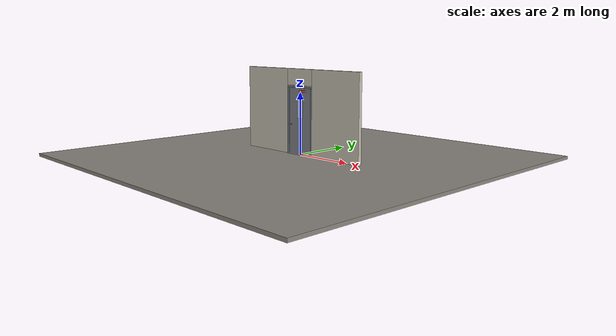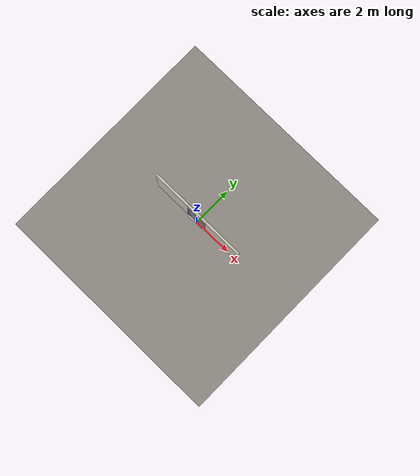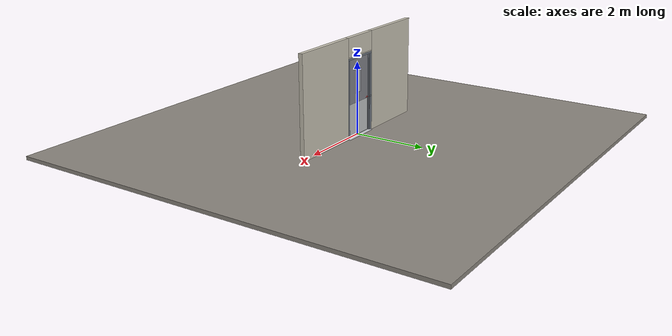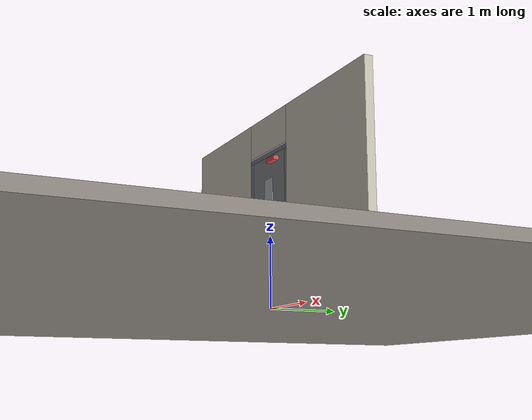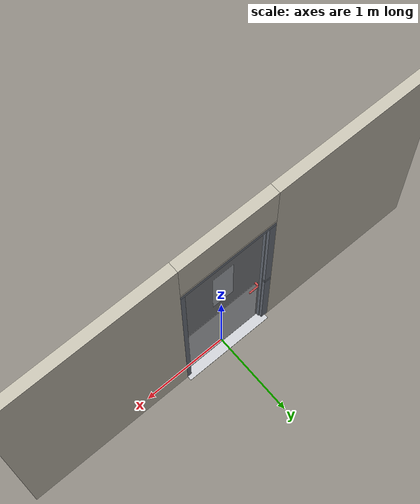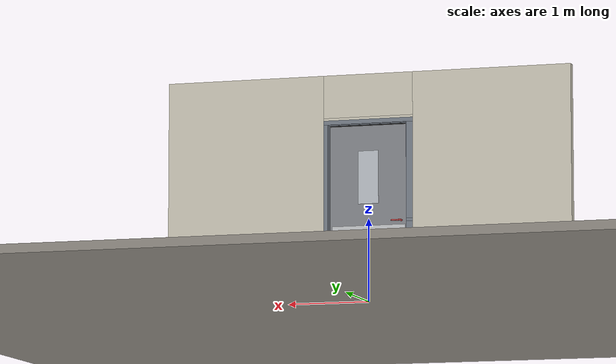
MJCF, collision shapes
<?xml version="1.0" ?>
<mujoco model="db0385_swing_single_simple">
  <compiler angle="radian" meshdir="../../hardware" texturedir="../../textures" autolimits="true" inertiafromgeom="false"/>
  <option timestep="0.002" integrator="implicitfast" cone="elliptic" impratio="10" noslip_iterations="3">
    <flag multiccd="enable"/>
  </option>
  <size memory="16M"/>
  <default>
    <geom condim="4" solref="0.005 1" solimp="0.95 0.99 0.001"/>
    <joint solreflimit="0.005 1" solimplimit="0.95 0.99 0.001"/>
    <tendon solreflimit="0.005 1"/>
    <equality solref="0.002 1"/>
  </default>
  <visual>
    <headlight ambient="0.4 0.4 0.4" diffuse="0.7 0.7 0.7" specular="0.2 0.2 0.2"/>
    <quality shadowsize="4096"/>
    <map znear="0.01" zfar="60"/>
  </visual>
  <asset>
    <mesh name="closer_body_b226fdb10b" file="closer_body_b226fdb10b.obj"/>
    <mesh name="hinge_e22b26c0c1" file="hinge_e22b26c0c1.obj"/>
    <mesh name="hinge_jamb_e1d088f8dc" file="hinge_jamb_e1d088f8dc.obj"/>
    <mesh name="lever_6268dcb28c" file="lever_6268dcb28c.obj"/>
    <material name="mat_floor" rgba="0.55 0.53 0.5 1" specular="0.2" shininess="0.15" reflectance="0"/>
    <material name="mat_wall" rgba="0.78 0.76 0.7 1" specular="0.2" shininess="0.1" reflectance="0"/>
    <material name="mat_leaf" rgba="0.5 0.51 0.53 1" specular="0.2" shininess="0.63" reflectance="0"/>
    <material name="mat_glass" rgba="0.9 0.93 0.95 0.6" specular="0.2" shininess="0.5" reflectance="0.1"/>
    <material name="mat_hinge" rgba="0.65 0.66 0.68 1" specular="0.74" shininess="0.5" reflectance="0.36"/>
    <material name="mat_op_stainless" rgba="0.75 0.76 0.77 1" specular="0.8" shininess="0.65" reflectance="0.4"/>
    <material name="mat_trim" rgba="0.85 0.66 0.3 1" specular="0.8" shininess="0.75" reflectance="0.4"/>
    <material name="mat_bolt" rgba="0.85 0.66 0.3 1" specular="0.8" shininess="0.75" reflectance="0.4"/>
    <material name="mat_frame" rgba="0.45 0.48 0.52 1" specular="0.32" shininess="0.6" reflectance="0.08"/>
    <material name="mat_seal" rgba="0.1 0.1 0.1 1" specular="0.2" shininess="0.1" reflectance="0"/>
    <material name="mat_threshold" rgba="0.8 0.81 0.83 1" specular="0.8" shininess="0.6" reflectance="0.4"/>
    <material name="mat_closer" rgba="0.22 0.17 0.13 1" specular="0.8" shininess="0.6" reflectance="0.4"/>
    <material name="mat_kick" rgba="0.75 0.76 0.77 1" specular="0.8" shininess="0.65" reflectance="0.4"/>
    <material name="mat_exit_sign" rgba="0.85 0.1 0.1 1" specular="0.2" shininess="0.6" reflectance="0"/>
    <material name="mat_sign_bracket" rgba="0.8 0.81 0.83 1" specular="0.8" shininess="0.6" reflectance="0.4"/>
    <material name="mat_sign" rgba="0.75 0.76 0.77 1" specular="0.8" shininess="0.65" reflectance="0.4"/>
    <material name="mat_placard" rgba="0.95 0.75 0.05 1" specular="0.2" shininess="0.5" reflectance="0"/>
    <texture name="skybox" type="skybox" builtin="gradient" rgb1="0.6 0.7 0.85" rgb2="0.9 0.92 0.95" width="256" height="256"/>
  </asset>
  <worldbody>
    <light name="sun" pos="1.5 -2.5 4" dir="-0.3 0.5 -0.8" directional="true" diffuse="0.8 0.8 0.8" specular="0.3 0.3 0.3" castshadow="true"/>
    <light name="fill" pos="-1.5 2.5 3" dir="0.3 -0.5 -0.7" directional="true" diffuse="0.35 0.35 0.4" castshadow="false"/>
    <camera name="robot_view" pos="0 -2.609312 1.812087" xyaxes="1 0 0 0 0.26963 0.962964" fovy="52"/>
    <camera name="far_view" pos="0 2.666313 1.812087" xyaxes="-1 0 0 0 -0.26963 0.962964" fovy="52"/>
    <camera name="iso" pos="-2.004737 -2.187262 2.234138" xyaxes="0.741536 -0.670913 0 0.242917 0.268487 0.932151" fovy="46"/>
    <camera name="detail_handle" pos="-0.136 -0.877 1.245" xyaxes="0.97561 0.219512 0 -0.070934 0.315262 0.94635" fovy="38"/>
    <geom name="floor" type="box" size="6 6 0.05" pos="0 0 -0.05" material="mat_floor" group="0" contype="1" conaffinity="1" friction="0.8 0.005 0.0001" density="2400"/>
    <geom name="wall_left" type="box" size="0.967 0.0575 1.3735" pos="-1.533 0.0285 1.3735" material="mat_wall" group="0" contype="1" conaffinity="1" friction="0.6 0.005 0.0001" density="800"/>
    <geom name="wall_right" type="box" size="0.982 0.0575 1.3735" pos="1.518 0.0285 1.3735" material="mat_wall" group="0" contype="1" conaffinity="1" friction="0.6 0.005 0.0001" density="800"/>
    <geom name="wall_header" type="box" size="0.551 0.0575 0.26" pos="-0.015 0.0285 2.487" material="mat_wall" group="0" contype="1" conaffinity="1" friction="0.6 0.005 0.0001" density="800"/>
    <geom name="hinge_0_jamb" type="mesh" mesh="hinge_jamb_e1d088f8dc" pos="0.483 -0.029 0.259" quat="0 0 1 0" material="mat_hinge" group="1" contype="0" conaffinity="0" density="7850"/>
    <geom name="hinge_1_jamb" type="mesh" mesh="hinge_jamb_e1d088f8dc" pos="0.483 -0.029 1.076" quat="0 0 1 0" material="mat_hinge" group="1" contype="0" conaffinity="0" density="7850"/>
    <geom name="hinge_2_jamb" type="mesh" mesh="hinge_jamb_e1d088f8dc" pos="0.483 -0.029 1.963" quat="0 0 1 0" material="mat_hinge" group="1" contype="0" conaffinity="0" density="7850"/>
    <geom name="jamb_hinge" type="box" size="0.025 0.0575 1.0735" pos="0.511 0.0285 1.0735" material="mat_frame" group="0" contype="1" conaffinity="1" friction="0.6 0.005 0.0001" density="300"/>
    <geom name="strike_965_wall_n" type="box" size="0.04 0.03825 0.0183" pos="-0.526 0.04775 0.965" material="mat_frame" group="0" contype="1" conaffinity="1" friction="0.6 0.005 0.0001" density="300"/>
    <geom name="strike_965_wall_p" type="box" size="0.04 0.008 0.0183" pos="-0.526 -0.0175 0.965" material="mat_frame" group="0" contype="1" conaffinity="1" friction="0.6 0.005 0.0001" density="300"/>
    <geom name="strike_965_ramp" type="box" size="0.04 0.018028 0.0183" pos="-0.529282 -0.018312 0.965" quat="0.957092 0 0 -0.289784" material="mat_frame" group="0" contype="1" conaffinity="1" friction="0.12 0.005 0.0001" density="300"/>
    <geom name="strike_965_back" type="box" size="0.0285 0.0095 0.0183" pos="-0.5375 0 0.965" material="mat_frame" group="0" contype="1" conaffinity="1" friction="0.6 0.005 0.0001" density="300"/>
    <geom name="jamb_strike_0" type="box" size="0.04 0.0575 0.47335" pos="-0.526 0.0285 0.47335" material="mat_frame" group="0" contype="1" conaffinity="1" friction="0.6 0.005 0.0001" density="300"/>
    <geom name="jamb_strike_1" type="box" size="0.04 0.0575 0.58185" pos="-0.526 0.0285 1.56515" material="mat_frame" group="0" contype="1" conaffinity="1" friction="0.6 0.005 0.0001" density="300"/>
    <geom name="jamb_head" type="box" size="0.551 0.0575 0.025" pos="-0.015 0.0285 2.172" material="mat_frame" group="0" contype="1" conaffinity="1" friction="0.6 0.005 0.0001" density="300"/>
    <geom name="head_stud" type="box" size="0.551 0.0575 0.015" pos="-0.015 0.0285 2.212" material="mat_wall" group="0" contype="1" conaffinity="1" friction="0.6 0.005 0.0001" density="500"/>
    <geom name="stop_hinge" type="box" size="0.0055 0.016 1.0735" pos="0.4805 0.0385 1.0735" material="mat_frame" group="0" contype="1" conaffinity="1" friction="0.6 0.005 0.0001" density="300"/>
    <geom name="stop_strike" type="box" size="0.0055 0.016 1.0735" pos="-0.4805 0.0385 1.0735" material="mat_frame" group="0" contype="1" conaffinity="1" friction="0.6 0.005 0.0001" density="300"/>
    <geom name="stop_head" type="box" size="0.486 0.016 0.0055" pos="0 0.0385 2.1415" material="mat_frame" group="0" contype="1" conaffinity="1" friction="0.6 0.005 0.0001" density="300"/>
    <geom name="seal_hinge" type="box" size="0.004 0.0025 1.0735" pos="0.483 0.0245 1.0735" material="mat_seal" group="1" contype="0" conaffinity="0" density="1100"/>
    <geom name="seal_strike" type="box" size="0.004 0.0025 1.0735" pos="-0.483 0.0245 1.0735" material="mat_seal" group="1" contype="0" conaffinity="0" density="1100"/>
    <geom name="seal_head" type="box" size="0.466 0.0025 0.008" pos="0 0.0245 2.135" material="mat_seal" group="1" contype="0" conaffinity="0" density="1100"/>
    <geom name="threshold" type="box" size="0.536 0.1075 0.004" pos="0 0.0285 0.004" material="mat_threshold" group="0" contype="1" conaffinity="1" friction="0.6 0.005 0.0001" density="2700"/>
    <site name="approach_point" pos="0 -1.5 0" quat="1 0 0 0" size="0.05" rgba="0.2 0.9 0.2 0.5" group="4"/>
    <site name="goal_point" pos="0 1.5 0" quat="1 0 0 0" size="0.05" rgba="0.2 0.9 0.2 0.5" group="4"/>
    <site name="door_plane_center" pos="0 0 1.0735" quat="1 0 0 0" size="0.02" rgba="0.2 0.9 0.2 0.5" group="4"/>
    <body name="leaf" pos="0.486 0 0">
      <inertial pos="-0.45718 -0.004257 1.100765" mass="56.295695" quat="0.515859 -0.511905 -0.477287 -0.494004" diaginertia="4.031002561 26.042213659 30.015356772"/>
      <joint name="leaf_hinge" type="hinge" axis="0 0 1" pos="-0.003 -0.029 0" limited="true" range="0 1.745329" solreflimit="0.02 1" damping="10.334212" frictionloss="2.209501" stiffness="14.018367" springref="-2.188557" armature="0.02"/>
      <geom name="leaf_slab" type="box" size="0.4825 0.022 1.067" pos="-0.4855 0 1.076" material="mat_leaf" group="0" contype="1" conaffinity="1" friction="0.4 0.005 0.0001" density="1"/>
      <geom name="leaf_glass_0" type="box" size="0.125 0.0228 0.3201" pos="-0.4855 0 1.5028" material="mat_glass" group="1" contype="0" conaffinity="0" density="1"/>
      <geom name="hinge_0" type="mesh" mesh="hinge_e22b26c0c1" pos="-0.003 -0.029 0.259" quat="0 0 1 0" material="mat_hinge" group="1" contype="0" conaffinity="0" density="7850"/>
      <geom name="hinge_1" type="mesh" mesh="hinge_e22b26c0c1" pos="-0.003 -0.029 1.076" quat="0 0 1 0" material="mat_hinge" group="1" contype="0" conaffinity="0" density="7850"/>
      <geom name="hinge_2" type="mesh" mesh="hinge_e22b26c0c1" pos="-0.003 -0.029 1.963" quat="0 0 1 0" material="mat_hinge" group="1" contype="0" conaffinity="0" density="7850"/>
      <geom name="leaf_latch_bolt_faceplate" type="box" size="0.0006 0.014 0.0283" pos="-0.9674 0 0.965" material="mat_bolt" group="1" contype="0" conaffinity="0" density="8500"/>
      <geom name="closer_body" type="mesh" mesh="closer_body_b226fdb10b" pos="-0.3 -0.022 2.054" quat="0 0 -0.707107 0.707107" material="mat_closer" group="1" contype="0" conaffinity="0" density="2000"/>
      <geom name="closer_body_col" type="box" size="0.12 0.04 0.03" pos="-0.3 -0.062 2.054" material="mat_closer" group="3" contype="1" conaffinity="1" rgba="0.8 0.3 0.3 0.25" friction="0.6 0.005 0.0001" density="2000"/>
      <geom name="armor_plate" type="box" size="0.4525 0.0008 0.45" pos="-0.4855 0.0228 0.469" material="mat_kick" group="2" contype="0" conaffinity="0" density="7900"/>
      <site name="leaf_edge_mid" pos="-0.968 0 1.067" quat="1 0 0 0" size="0.02" rgba="0.2 0.9 0.2 0.5" group="4"/>
      <body name="leaf_handle" pos="-0.898 0 0.965">
        <inertial pos="0.03705 0 0" mass="0.984967" quat="0.707107 0 0 -0.707107" diaginertia="0.002278035 0.00380889 0.005520856"/>
        <joint name="leaf_handle_hinge" type="hinge" axis="0 1 0" limited="true" range="0 0.96" damping="0.255791" frictionloss="0.05" stiffness="1.2" springref="-0.583333" armature="0.01"/>
        <geom name="leaf_handle_lever_n" type="mesh" mesh="lever_6268dcb28c" pos="0 -0.022 0" quat="0 0 -0.707107 0.707107" material="mat_op_stainless" group="1" contype="0" conaffinity="0" density="3000"/>
        <geom name="leaf_handle_lever_col_n" type="capsule" size="0.0095 0.0505" pos="0.06 -0.077 0" quat="0.707107 0 0.707107 0" material="mat_op_stainless" group="3" contype="1" conaffinity="1" rgba="0.8 0.3 0.3 0.25" friction="0.7 0.01 0.0001" density="3000"/>
        <geom name="leaf_handle_hub_col_n" type="cylinder" size="0.012 0.022" pos="0 -0.052 0" quat="0.707107 -0.707107 0 0" material="mat_op_stainless" group="3" contype="1" conaffinity="1" rgba="0.8 0.3 0.3 0.25" friction="0.6 0.005 0.0001" density="3000"/>
        <geom name="leaf_handle_lever_p" type="mesh" mesh="lever_6268dcb28c" pos="0 0.022 0" quat="0 0 0.707107 0.707107" material="mat_op_stainless" group="1" contype="0" conaffinity="0" density="3000"/>
        <geom name="leaf_handle_lever_col_p" type="capsule" size="0.0095 0.0505" pos="0.06 0.077 0" quat="0.707107 0 0.707107 0" material="mat_op_stainless" group="3" contype="1" conaffinity="1" rgba="0.8 0.3 0.3 0.25" friction="0.7 0.01 0.0001" density="3000"/>
        <geom name="leaf_handle_hub_col_p" type="cylinder" size="0.012 0.022" pos="0 0.052 0" quat="0.707107 -0.707107 0 0" material="mat_op_stainless" group="3" contype="1" conaffinity="1" rgba="0.8 0.3 0.3 0.25" friction="0.6 0.005 0.0001" density="3000"/>
        <site name="leaf_handle_grip_n" pos="0.096 -0.077 0" quat="1 0 0 0" size="0.012" rgba="0.2 0.9 0.2 0.5" group="4"/>
        <site name="leaf_handle_grip_p" pos="0.096 0.077 0" quat="1 0 0 0" size="0.012" rgba="0.2 0.9 0.2 0.5" group="4"/>
      </body>
      <body name="leaf_latch_bolt" pos="-0.968 0 0.965">
        <inertial pos="0.0055 0 0" mass="0.074627" quat="0.92388 0.382683 0 0" diaginertia="0.000002271 0.000013255 0.000013255"/>
        <joint name="leaf_latch_bolt_slide" type="slide" axis="1 0 0" limited="true" range="0 0.019" damping="2" frictionloss="0.3" stiffness="600" springref="-0.01" armature="0.1"/>
        <geom name="leaf_latch_bolt_capsule" type="capsule" size="0.008 0.0165" pos="0.0055 0 0" quat="0.707107 0 -0.707107 0" material="mat_bolt" group="0" contype="1" conaffinity="1" friction="0.2 0.005 0.0001" density="8500"/>
      </body>
    </body>
  </worldbody>
  <tendon>
    <fixed name="leaf_latch_bolt_coupling" limited="true" range="0 10">
      <joint joint="leaf_latch_bolt_slide" coef="1"/>
      <joint joint="leaf_handle_hinge" coef="-0.020879"/>
    </fixed>
  </tendon>
  <sensor>
    <jointpos name="leaf_hinge_pos" joint="leaf_hinge"/>
    <jointvel name="leaf_hinge_vel" joint="leaf_hinge"/>
    <jointpos name="leaf_handle_hinge_pos" joint="leaf_handle_hinge"/>
    <jointvel name="leaf_handle_hinge_vel" joint="leaf_handle_hinge"/>
    <jointpos name="leaf_latch_bolt_slide_pos" joint="leaf_latch_bolt_slide"/>
    <jointvel name="leaf_latch_bolt_slide_vel" joint="leaf_latch_bolt_slide"/>
  </sensor>
</mujoco>
